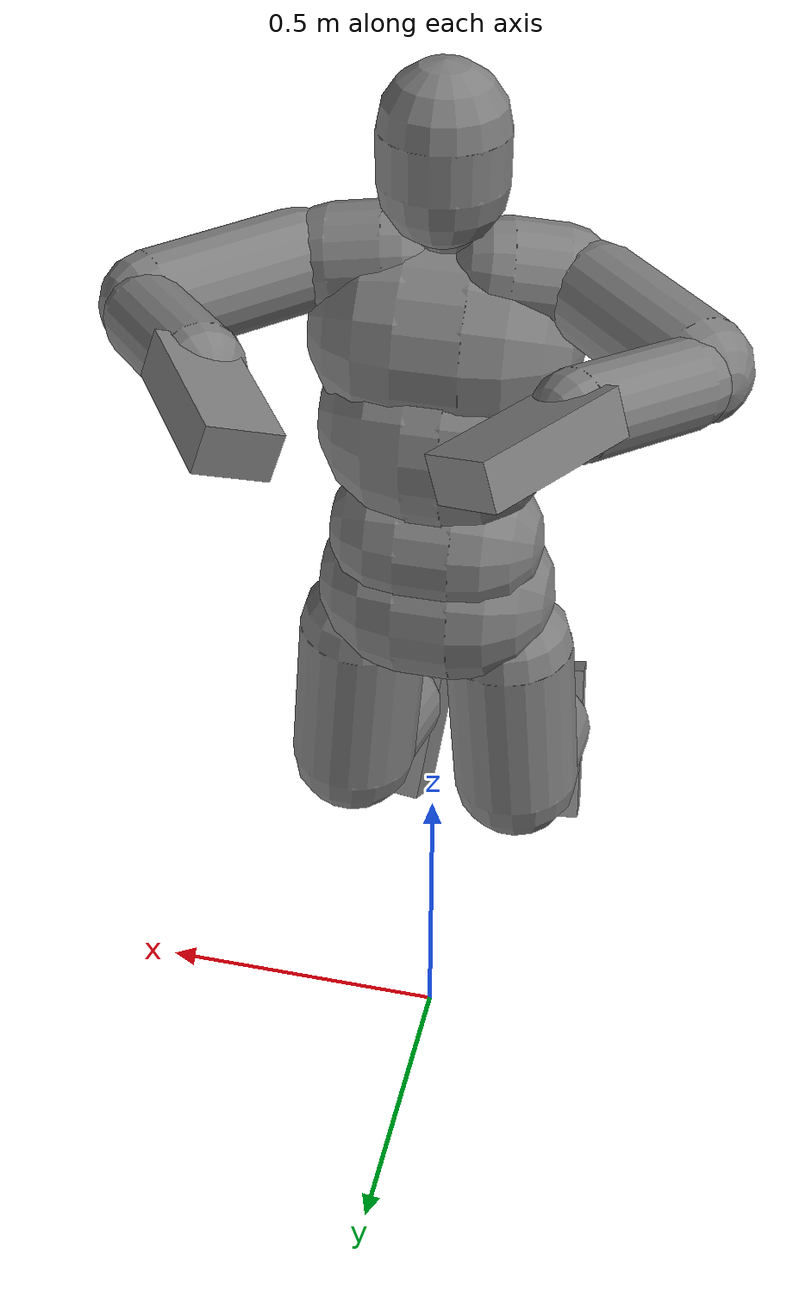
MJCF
<mujoco model="SK_Mannequin_PhysicsAsset_ABFB4">
	<compiler angle="degree" inertiafromgeom="true"/>
	<option timestep="0.01666"/>
	<statistic extent="2" center="0 0 1"/>
	<default>
		<motor ctrlrange="-1 1" ctrllimited="true"/>
		<default class="body">
			<geom type="capsule" condim="1" friction="1.00 1.00 1.00" solimp=".9 .99 .003" solref=".015 1"/>
			<joint type="hinge" damping="1.00" stiffness="1" armature="0.01" limited="true" solimplimit="0 .99 .01"/>
		</default>
	</default>
	<worldbody>
		<body name="pelvis" pos="0.0000 -0.0106 0.9675" quat="-0.7071 0.0013 0.7071 -0.0013" childclass="body">
			<freejoint name="pelvis"/>
			<geom name="pelvis" fromto="0.0000 0.0000 0.0431 0.0000 0.0000 -0.0431" quat="0.7071 -0.0000 0.0000 -0.7071" size="0.1459" density="1000.00"/>
			<body name="spine_01" pos="0.1081 0.0085 -0.0000" quat="0.9981 -0.0000 -0.0000 0.0624">
				<joint name="spine_01_x" pos="0.0000 0.0000 0.0000" axis="1.00000000 0.00000000 0.00000000" range="-30 30" stiffness="0.0000" damping="1.0000" armature="0.00"/>
				<joint name="spine_01_y" pos="0.0000 0.0000 0.0000" axis="0.00000000 1.00000000 0.00000000" range="-30 30" stiffness="0.0000" damping="1.0000" armature="0.00"/>
				<joint name="spine_01_z" pos="0.0000 0.0000 0.0000" axis="0.00000000 0.00000000 1.00000000" range="-30 30" stiffness="0.0000" damping="1.0000" armature="0.00"/>
				<geom name="spine_01" fromto="0.0000 0.0000 0.0422 0.0000 0.0000 -0.0422" quat="0.7071 -0.0000 0.0000 -0.7071" size="0.1261" density="1000.00"/>
				<body name="spine_02" pos="0.1888 -0.0380 0.0000" quat="0.9925 0.0000 -0.0000 -0.1224">
					<joint name="spine_02_x" pos="0.0000 0.0000 0.0000" axis="1.00000000 0.00000000 0.00000000" range="-45 45" stiffness="0.0000" damping="1.0000" armature="0.00"/>
					<joint name="spine_02_y" pos="0.0000 0.0000 0.0000" axis="0.00000000 1.00000000 0.00000000" range="-45 45" stiffness="0.0000" damping="1.0000" armature="0.00"/>
					<joint name="spine_02_z" pos="0.0000 0.0000 0.0000" axis="0.00000000 0.00000000 1.00000000" range="-45 45" stiffness="0.0000" damping="1.0000" armature="0.00"/>
					<geom name="spine_02" fromto="0.0000 0.0000 0.0281 0.0000 0.0000 -0.0281" quat="1.0000 0.0000 -0.0000 0.0000" size="0.1564" density="1000.00"/>
					<body name="spine_03" pos="0.1341 -0.0042 -0.0000" quat="0.9997 -0.0000 0.0000 -0.0243">
						<joint name="spine_03_x" pos="0.0000 0.0000 0.0000" axis="1.00000000 0.00000000 0.00000000" range="-45 45" stiffness="0.0000" damping="1.0000" armature="0.00"/>
						<joint name="spine_03_y" pos="0.0000 0.0000 0.0000" axis="0.00000000 1.00000000 0.00000000" range="-45 45" stiffness="0.0000" damping="1.0000" armature="0.00"/>
						<joint name="spine_03_z" pos="0.0000 0.0000 0.0000" axis="0.00000000 0.00000000 1.00000000" range="-45 45" stiffness="0.0000" damping="1.0000" armature="0.00"/>
						<geom name="spine_03" fromto="0.0000 -0.0154 0.0487 0.0000 -0.0154 -0.0487" quat="0.7071 -0.0000 0.0000 -0.7071" size="0.1580" density="1000.00"/>
						<body name="clavicle_l" pos="0.1188 0.0273 -0.0378" quat="0.6480 -0.1445 0.7448 -0.0668">
							<joint name="clavicle_l_x" pos="0.0000 0.0000 0.0000" axis="1.00000000 0.00000593 -0.00002722" range="-65 65" stiffness="0.0000" damping="1.0000" armature="0.00"/>
							<joint name="clavicle_l_y" pos="0.0000 0.0000 0.0000" axis="-0.00000593 1.00000000 0.00006086" range="-65 65" stiffness="0.0000" damping="1.0000" armature="0.00"/>
							<joint name="clavicle_l_z" pos="0.0000 0.0000 0.0000" axis="0.00002722 -0.00006086 1.00000000" range="-65 65" stiffness="0.0000" damping="1.0000" armature="0.00"/>
							<geom name="clavicle_l" fromto="0.1283 0.0140 -0.0000 0.0517 -0.0140 0.0000" quat="0.6964 -0.1228 0.6964 0.1228" size="0.0802" density="1000.00"/>
							<body name="upperarm_l" pos="0.1578 -0.0000 0.0000" quat="0.8511 -0.0628 -0.0716 0.5162">
								<joint name="upperarm_l_x" pos="0.0000 0.0000 0.0000" axis="1.00000000 0.00000000 0.00000000" range="-45 45" stiffness="0.0000" damping="1.0000" armature="0.00"/>
								<joint name="upperarm_l_y" pos="0.0000 0.0000 0.0000" axis="0.00000000 1.00000000 0.00000000" range="-85 85" stiffness="0.0000" damping="1.0000" armature="0.00"/>
								<joint name="upperarm_l_z" pos="0.0000 0.0000 0.0000" axis="0.00000000 0.00000000 1.00000000" range="-45 45" stiffness="0.0000" damping="1.0000" armature="0.00"/>
								<geom name="upperarm_l" fromto="0.0443 0.0000 -0.0000 0.2794 0.0000 0.0000" quat="0.7071 0.0000 -0.7071 0.0000" size="0.0759" density="1000.00"/>
								<body name="lowerarm_l" pos="0.3034 -0.0000 0.0000" quat="0.7472 0.0138 -0.0949 0.6576">
									<joint name="lowerarm_l_z" pos="0.0000 0.0000 0.0000" axis="0.00000000 0.00000000 1.00000000" range="-90 90" stiffness="0.0000" damping="1.0000" armature="0.00"/>
									<geom name="lowerarm_l" fromto="0.0443 0.0000 -0.0000 0.2380 0.0000 0.0000" quat="0.7071 0.0000 -0.7071 0.0000" size="0.0629" density="1000.00"/>
									<body name="hand_l" pos="0.2698 -0.0000 -0.0000" quat="0.7859 0.6179 0.0194 -0.0107">
										<joint name="hand_l_y" pos="0.0000 0.0000 0.0000" axis="0.00000000 1.00000000 0.00000000" range="-25 25" stiffness="0.0000" damping="1.0000" armature="0.00"/>
										<joint name="hand_l_z" pos="0.0000 0.0000 0.0000" axis="0.00000000 0.00000000 1.00000000" range="-35 35" stiffness="0.0000" damping="1.0000" armature="0.00"/>
										<geom name="hand_l" type="box" pos="0.0688 -0.0109 0.0212" quat="0.5496 0.5181 0.4495 0.4769" size="0.0342 0.0535 0.1180" density="1000.00"/>
									</body>
								</body>
							</body>
						</body>
						<body name="clavicle_r" pos="0.1188 0.0273 0.0378" quat="-0.0668 0.7448 0.1445 -0.6479">
							<joint name="clavicle_r_x" pos="0.0000 0.0000 0.0000" axis="0.98480800 -0.17364679 -0.00000626" range="-65 65" stiffness="0.0000" damping="1.0000" armature="0.00"/>
							<joint name="clavicle_r_y" pos="0.0000 0.0000 0.0000" axis="0.17364679 0.98480800 0.00000657" range="-65 65" stiffness="0.0000" damping="1.0000" armature="0.00"/>
							<joint name="clavicle_r_z" pos="0.0000 0.0000 0.0000" axis="0.00000502 -0.00000755 1.00000000" range="-65 65" stiffness="0.0000" damping="1.0000" armature="0.00"/>
							<geom name="clavicle_r" fromto="-0.1308 0.0000 -0.0000 -0.0492 -0.0000 0.0000" quat="0.0000 -0.7071 0.0000 0.7071" size="0.0802" density="1000.00"/>
							<body name="upperarm_r" pos="-0.1578 0.0000 -0.0000" quat="0.8509 -0.0631 -0.0738 0.5162">
								<joint name="upperarm_r_x" pos="0.0000 0.0000 0.0000" axis="1.00000000 0.00000000 0.00000000" range="-45 45" stiffness="0.0000" damping="1.0000" armature="0.00"/>
								<joint name="upperarm_r_y" pos="0.0000 0.0000 0.0000" axis="0.00000000 1.00000000 0.00000000" range="-85 85" stiffness="0.0000" damping="1.0000" armature="0.00"/>
								<joint name="upperarm_r_z" pos="0.0000 0.0000 0.0000" axis="0.00000000 0.00000000 1.00000000" range="-45 45" stiffness="0.0000" damping="1.0000" armature="0.00"/>
								<geom name="upperarm_r" fromto="-0.0443 0.0000 -0.0000 -0.2794 -0.0000 0.0000" quat="0.0000 -0.7071 -0.0000 -0.7071" size="0.0759" density="1000.00"/>
								<body name="lowerarm_r" pos="-0.3034 0.0000 0.0000" quat="0.7473 0.0138 -0.0949 0.6576">
									<joint name="lowerarm_r_z" pos="0.0000 0.0000 0.0000" axis="0.00000192 -0.00000903 1.00000000" range="-90 90" stiffness="0.0000" damping="1.0000" armature="0.00"/>
									<geom name="lowerarm_r" fromto="-0.0443 0.0000 -0.0000 -0.2380 -0.0000 0.0000" quat="0.0000 -0.7071 -0.0000 -0.7071" size="0.0629" density="1000.00"/>
									<body name="hand_r" pos="-0.2698 -0.0000 -0.0000" quat="0.7859 0.6179 0.0194 -0.0107">
										<joint name="hand_r_y" pos="0.0000 0.0000 0.0000" axis="0.00000000 1.00000000 0.00000000" range="-25 25" stiffness="0.0000" damping="1.0000" armature="0.00"/>
										<joint name="hand_r_z" pos="0.0000 0.0000 0.0000" axis="0.00000000 0.00000000 1.00000000" range="-35 35" stiffness="0.0000" damping="1.0000" armature="0.00"/>
										<geom name="hand_r" type="box" pos="-0.0688 0.0109 -0.0212" quat="0.5181 -0.5496 -0.4769 0.4495" size="0.0342 0.0535 0.1180" density="1000.00"/>
									</body>
								</body>
							</body>
						</body>
						<body name="neck_01" pos="0.1656 0.0036 -0.0000" quat="0.9790 0.0000 -0.0000 0.2037">
							<joint name="neck_01_z" pos="0.0000 0.0000 0.0000" axis="0.00000000 0.00000000 1.00000000" range="-25 25" stiffness="0.0000" damping="1.0000" armature="0.00"/>
							<geom name="neck_01" fromto="0.0414 0.0000 -0.0000 0.0699 0.0000 0.0000" quat="0.7071 0.0000 -0.7071 0.0000" size="0.0684" density="1000.00"/>
							<body name="head" pos="0.0928 -0.0036 0.0000" quat="0.9910 0.0000 0.0000 -0.1335">
								<joint name="head_x" pos="0.0000 0.0000 0.0000" axis="1.00000000 0.00000000 0.00000000" range="-25 25" stiffness="0.0000" damping="1.0000" armature="0.00"/>
								<joint name="head_y" pos="0.0000 0.0000 0.0000" axis="0.00000000 1.00000000 0.00000000" range="-25 25" stiffness="0.0000" damping="1.0000" armature="0.00"/>
								<joint name="head_z" pos="0.0000 0.0000 0.0000" axis="0.00000000 0.00000000 1.00000000" range="-15 15" stiffness="0.0000" damping="1.0000" armature="0.00"/>
								<geom name="head" fromto="0.0046 0.0262 0.0000 0.0792 0.0262 0.0000" quat="0.7071 0.0000 -0.7071 0.0000" size="0.0940" density="1000.00"/>
							</body>
						</body>
					</body>
				</body>
			</body>
			<body name="thigh_l" pos="-0.0145 0.0053 -0.0901" quat="0.9953 -0.0737 -0.0621 0.0086">
				<joint name="thigh_l_x" pos="0.0000 0.0000 0.0000" axis="1.00000000 0.00000000 0.00000000" range="-45 45" stiffness="0.0000" damping="1.0000" armature="0.00"/>
				<joint name="thigh_l_y" pos="0.0000 0.0000 0.0000" axis="0.00000000 1.00000000 0.00000000" range="-65 65" stiffness="0.0000" damping="1.0000" armature="0.00"/>
				<joint name="thigh_l_z" pos="0.0000 0.0000 0.0000" axis="0.00000000 0.00000000 1.00000000" range="-85 85" stiffness="0.0000" damping="1.0000" armature="0.00"/>
				<geom name="thigh_l" fromto="-0.0868 0.0040 -0.0182 -0.3622 0.0089 -0.0047" quat="0.4882 -0.5022 0.5217 -0.4870" size="0.1040" density="1000.00"/>
				<body name="calf_l" pos="-0.4257 -0.0000 -0.0000" quat="0.8301 0.0518 -0.0081 0.5551">
					<joint name="calf_l_z" pos="0.0000 0.0000 0.0000" axis="0.00000000 0.00000000 1.00000000" range="-65 65" stiffness="0.0000" damping="1.0000" armature="0.00"/>
					<geom name="calf_l" fromto="-0.3495 -0.0054 -0.0067 -0.0390 -0.0116 -0.0046" quat="0.5115 -0.4982 -0.5052 0.4847" size="0.0798" density="1000.00"/>
					<body name="foot_l" pos="-0.4020 0.0000 0.0000" quat="0.9970 0.0059 0.0320 -0.0704">
						<joint name="foot_l_x" pos="0.0000 0.0000 0.0000" axis="1.00000000 0.00000000 0.00000000" range="-45 45" stiffness="0.0000" damping="1.0000" armature="0.00"/>
						<joint name="foot_l_y" pos="0.0000 0.0000 0.0000" axis="0.00000000 1.00000000 0.00000000" range="-5 5" stiffness="0.0000" damping="1.0000" armature="0.00"/>
						<joint name="foot_l_z" pos="0.0000 0.0000 0.0000" axis="0.00000000 0.00000000 1.00000000" range="-35 35" stiffness="0.0000" damping="1.0000" armature="0.00"/>
						<geom name="foot_l" type="box" pos="-0.0765 0.0503 -0.0061" quat="0.7083 -0.7059 0.0056 -0.0041" size="0.0578 0.0578 0.1415" density="1000.00"/>
					</body>
				</body>
			</body>
			<body name="thigh_r" pos="-0.0145 0.0053 0.0901" quat="-0.0086 0.0621 -0.0737 0.9953">
				<joint name="thigh_r_x" pos="0.0000 0.0000 0.0000" axis="1.00000000 0.00000000 0.00000000" range="-45 45" stiffness="0.0000" damping="1.0000" armature="0.00"/>
				<joint name="thigh_r_y" pos="0.0000 0.0000 0.0000" axis="0.00000000 1.00000000 0.00000000" range="-65 65" stiffness="0.0000" damping="1.0000" armature="0.00"/>
				<joint name="thigh_r_z" pos="0.0000 0.0000 0.0000" axis="0.00000000 0.00000000 1.00000000" range="-85 85" stiffness="0.0000" damping="1.0000" armature="0.00"/>
				<geom name="thigh_r" fromto="0.0868 -0.0040 0.0182 0.3622 -0.0089 0.0047" quat="0.5022 0.4882 -0.4870 -0.5217" size="0.1040" density="1000.00"/>
				<body name="calf_r" pos="0.4257 0.0000 -0.0000" quat="0.8290 0.0517 -0.0082 0.5568">
					<joint name="calf_r_z" pos="0.0000 0.0000 0.0000" axis="0.00000000 0.00000000 1.00000000" range="-65 65" stiffness="0.0000" damping="1.0000" armature="0.00"/>
					<geom name="calf_r" fromto="0.3495 0.0054 0.0067 0.0390 0.0116 0.0046" quat="0.4982 0.5115 0.4847 0.5052" size="0.0798" density="1000.00"/>
					<body name="foot_r" pos="0.4020 -0.0000 -0.0000" quat="0.9970 0.0059 0.0320 -0.0704">
						<joint name="foot_r_x" pos="0.0000 0.0000 0.0000" axis="1.00000000 0.00000000 0.00000000" range="-45 45" stiffness="0.0000" damping="1.0000" armature="0.00"/>
						<joint name="foot_r_y" pos="0.0000 0.0000 0.0000" axis="0.00000000 1.00000000 0.00000000" range="-5 5" stiffness="0.0000" damping="1.0000" armature="0.00"/>
						<joint name="foot_r_z" pos="0.0000 0.0000 0.0000" axis="0.00000000 0.00000000 1.00000000" range="-35 35" stiffness="0.0000" damping="1.0000" armature="0.00"/>
						<geom name="foot_r" type="box" pos="0.0765 -0.0503 0.0061" quat="0.7059 0.7083 -0.0041 -0.0056" size="0.0578 0.0578 0.1415" density="1000.00"/>
					</body>
				</body>
			</body>
		</body>
	</worldbody>
	<actuator>
		<motor name="spine_01_x" gear="3200000" joint="spine_01_x"/>
		<motor name="spine_01_y" gear="3200000" joint="spine_01_y"/>
		<motor name="spine_01_z" gear="3200000" joint="spine_01_z"/>
		<motor name="spine_02_x" gear="3200000" joint="spine_02_x"/>
		<motor name="spine_02_y" gear="3200000" joint="spine_02_y"/>
		<motor name="spine_02_z" gear="3200000" joint="spine_02_z"/>
		<motor name="spine_03_x" gear="3200000" joint="spine_03_x"/>
		<motor name="spine_03_y" gear="3200000" joint="spine_03_y"/>
		<motor name="spine_03_z" gear="3200000" joint="spine_03_z"/>
		<motor name="clavicle_l_x" gear="3200000" joint="clavicle_l_x"/>
		<motor name="clavicle_l_y" gear="3200000" joint="clavicle_l_y"/>
		<motor name="clavicle_l_z" gear="3200000" joint="clavicle_l_z"/>
		<motor name="upperarm_l_x" gear="3200000" joint="upperarm_l_x"/>
		<motor name="upperarm_l_y" gear="3200000" joint="upperarm_l_y"/>
		<motor name="upperarm_l_z" gear="3200000" joint="upperarm_l_z"/>
		<motor name="lowerarm_l_z" gear="3200000" joint="lowerarm_l_z"/>
		<motor name="hand_l_y" gear="320000" joint="hand_l_y"/>
		<motor name="hand_l_z" gear="320000" joint="hand_l_z"/>
		<motor name="clavicle_r_x" gear="3200000" joint="clavicle_r_x"/>
		<motor name="clavicle_r_y" gear="3200000" joint="clavicle_r_y"/>
		<motor name="clavicle_r_z" gear="3200000" joint="clavicle_r_z"/>
		<motor name="upperarm_r_x" gear="3200000" joint="upperarm_r_x"/>
		<motor name="upperarm_r_y" gear="3200000" joint="upperarm_r_y"/>
		<motor name="upperarm_r_z" gear="3200000" joint="upperarm_r_z"/>
		<motor name="lowerarm_r_z" gear="3200000" joint="lowerarm_r_z"/>
		<motor name="hand_r_y" gear="320000" joint="hand_r_y"/>
		<motor name="hand_r_z" gear="320000" joint="hand_r_z"/>
		<motor name="neck_01_z" gear="3200000" joint="neck_01_z"/>
		<motor name="head_x" gear="3200000" joint="head_x"/>
		<motor name="head_y" gear="3200000" joint="head_y"/>
		<motor name="head_z" gear="3200000" joint="head_z"/>
		<motor name="thigh_l_x" gear="6400000" joint="thigh_l_x"/>
		<motor name="thigh_l_y" gear="6400000" joint="thigh_l_y"/>
		<motor name="thigh_l_z" gear="6400000" joint="thigh_l_z"/>
		<motor name="calf_l_z" gear="6400000" joint="calf_l_z"/>
		<motor name="foot_l_x" gear="500000" joint="foot_l_x"/>
		<motor name="foot_l_y" gear="500000" joint="foot_l_y"/>
		<motor name="foot_l_z" gear="500000" joint="foot_l_z"/>
		<motor name="thigh_r_x" gear="6400000" joint="thigh_r_x"/>
		<motor name="thigh_r_y" gear="6400000" joint="thigh_r_y"/>
		<motor name="thigh_r_z" gear="6400000" joint="thigh_r_z"/>
		<motor name="calf_r_z" gear="6400000" joint="calf_r_z"/>
		<motor name="foot_r_x" gear="500000" joint="foot_r_x"/>
		<motor name="foot_r_y" gear="500000" joint="foot_r_y"/>
		<motor name="foot_r_z" gear="500000" joint="foot_r_z"/>
	</actuator>
</mujoco>
